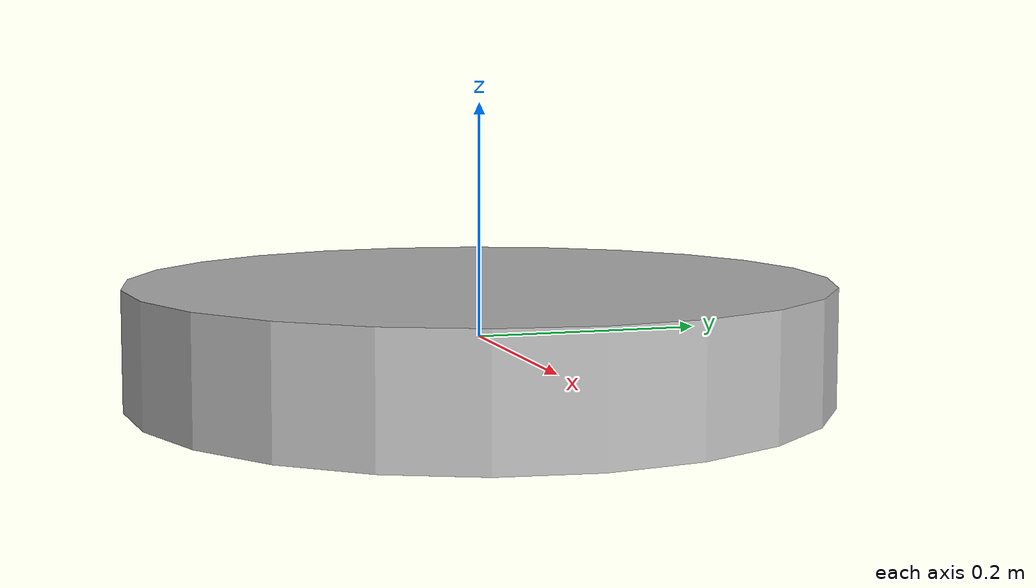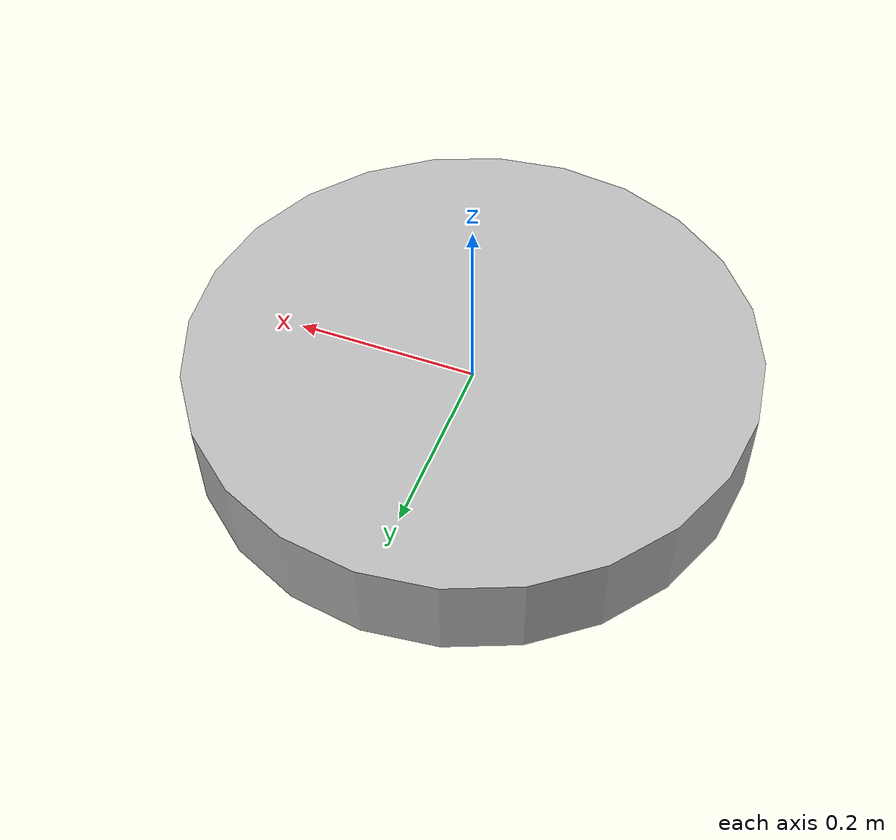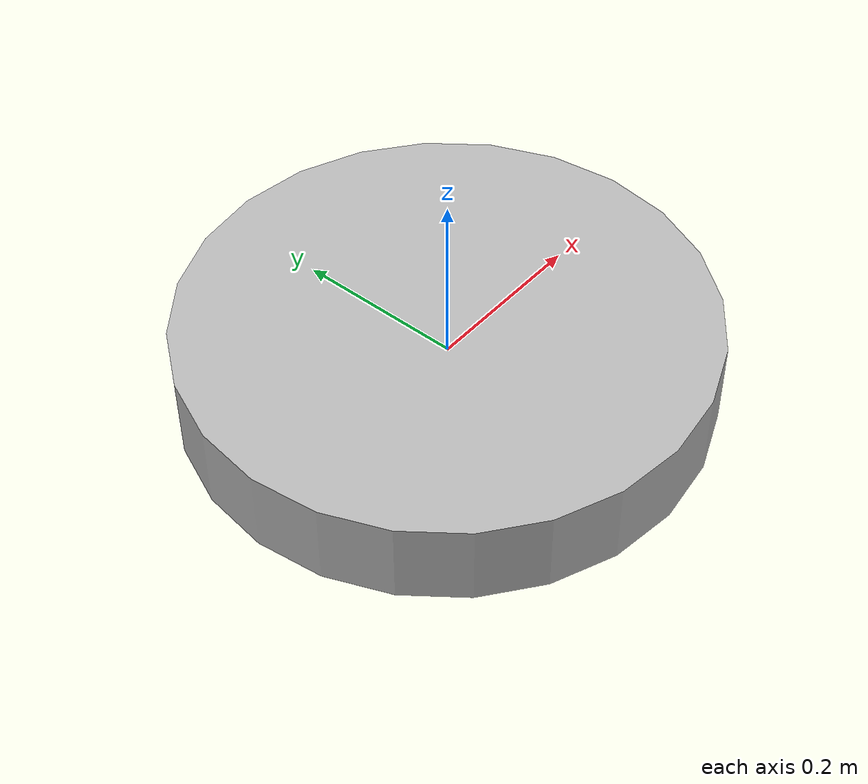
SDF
<sdf version="1.6">
  <model name="drone">
    <static>false</static>

    <!-- Define the base link of the drone -->
    <link name="base_link">
      <pose>0 0 0 0 0 0</pose>
      <inertial>
        <mass>1.0</mass>
        <inertia>
          <ixx>0.1</ixx>
          <iyy>0.1</iyy>
          <izz>0.1</izz>
        </inertia>
      </inertial>
      <gravity>false</gravity>  <!-- Disable gravity -->
      <collision name="base_collision">
        <geometry>
          <cylinder>
            <radius>0.3</radius>
            <length>0.1</length>
          </cylinder>
        </geometry>
      </collision>
      <visual name="base_visual">
        <geometry>
          <cylinder>
            <radius>0.3</radius>
            <length>0.1</length>
          </cylinder>
        </geometry>
      </visual>

      <!-- 3D LiDAR sensor attached to the drone -->
      <sensor name="lidar_sensor" type="gpu_ray">
        <pose>0 0 -0.05 0 0 0</pose>
        <always_on>true</always_on>
        <update_rate>10</update_rate>  <!-- Update rate of 10 Hz -->
        <visualize>false</visualize>    <!-- Visualize the LiDAR rays in Gazebo -->

        <!-- Laser scan configuration -->
        <ray>
          <scan>
            <horizontal>
              <samples>200</samples>      <!-- Number of horizontal samples (360-degree scan) -->
              <min_angle>-3.14159</min_angle>  <!-- Minimum angle (radians, -pi) -->
              <max_angle>3.14159</max_angle>   <!-- Maximum angle (radians, pi) -->
            </horizontal>
            <vertical>
              <samples>50</samples>           <!-- Number of vertical samples -->
              <min_angle>-1.4</min_angle>  <!-- Minimum vertical angle (-90~ degrees in radians, downward) -->
              <max_angle>-0.61</max_angle>  <!-- Maximum vertical angle (-35 degrees, horizontal plane) -->
            </vertical>
          </scan>
          <range>
            <min>0.1</min>     <!-- Minimum detection range -->
            <max>30.0</max>    <!-- Maximum detection range -->
            <resolution>0.01</resolution>  <!-- Range resolution -->
          </range>
          <noise>
              <type>gaussian</type>
              <mean>0.0</mean>
              <stddev>0.01</stddev>     <!-- Gaussian noise of deviation 0.01 -->
            </noise>
        </ray>

        <!-- ROS2 Plugin -->
        <plugin name="gazebo_ros_lidar" filename="libgazebo_ros_ray_sensor.so">
          <ros>
            <namespace>/drone/laser</namespace>
            <remapping>~/out:=scan</remapping>  <!-- Topic is /drone/laser/scan -->
          </ros>
          <!-- Set output to sensor_msgs/PointCloud to get the same output type as gazebo_ros_laser -->
          <output_type>sensor_msgs/PointCloud2</output_type>
        </plugin>
      </sensor>

    </link>
  </model>
</sdf>
